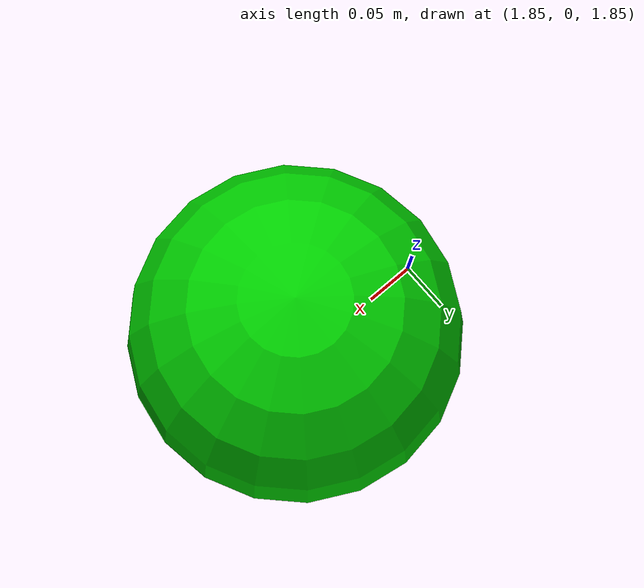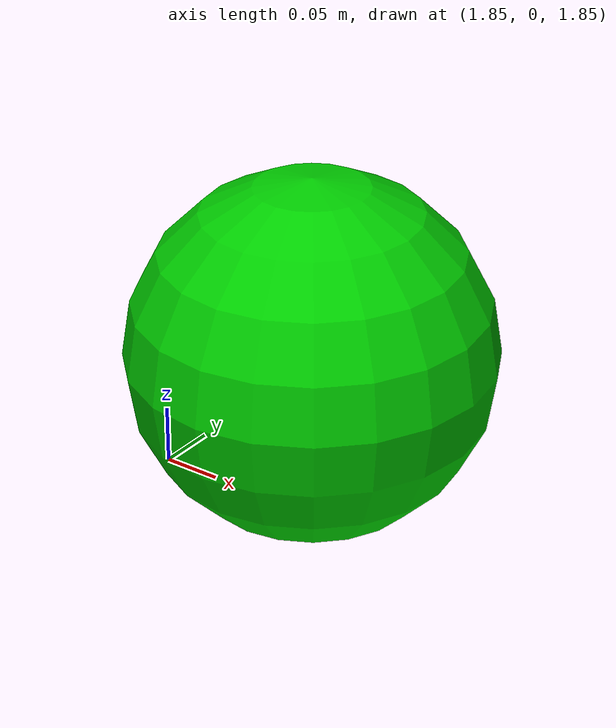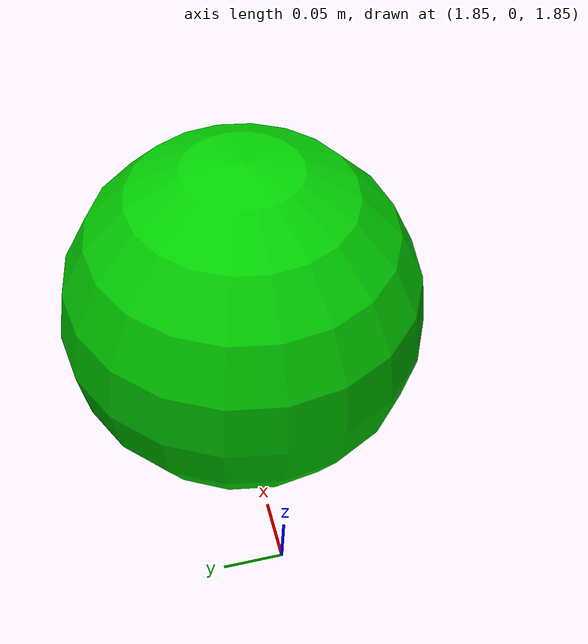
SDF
<?xml version="1.0" ?>
<!-- Open world for the drone: a ground plane and a target marker at altitude. No rendering
     sensors are needed, so the Sensors system is omitted — fully headless. -->
<sdf version="1.9">
  <world name="warehouse">
    <physics name="1ms" type="ignored">
      <max_step_size>0.001</max_step_size>
      <real_time_factor>1.0</real_time_factor>
    </physics>
    <plugin filename="gz-sim-physics-system" name="gz::sim::systems::Physics"/>
    <plugin filename="gz-sim-scene-broadcaster-system" name="gz::sim::systems::SceneBroadcaster"/>
    <plugin filename="gz-sim-user-commands-system" name="gz::sim::systems::UserCommands"/>
    <plugin filename="gz-sim-imu-system" name="gz::sim::systems::Imu"/>

    <light type="directional" name="sun">
      <cast_shadows>false</cast_shadows>
      <direction>-0.5 0.1 -0.9</direction>
      <diffuse>1 1 1 1</diffuse>
      <specular>0.2 0.2 0.2 1</specular>
    </light>

    <model name="ground">
      <static>true</static>
      <link name="link">
        <collision name="c"><geometry><plane><normal>0 0 1</normal><size>40 40</size></plane></geometry></collision>
        <visual name="v">
          <geometry><plane><normal>0 0 1</normal><size>40 40</size></plane></geometry>
          <material><ambient>0.3 0.3 0.3 1</ambient><diffuse>0.5 0.5 0.5 1</diffuse></material>
        </visual>
      </link>
    </model>

    <!-- Target marker (visual only) at (2, 0, 2): fly here and hover. -->
    <model name="goal_marker">
      <static>true</static>
      <pose>2 0 2 0 0 0</pose>
      <link name="link">
        <visual name="v">
          <geometry><sphere><radius>0.15</radius></sphere></geometry>
          <material><ambient>0 0.6 0 1</ambient><diffuse>0 0.8 0 1</diffuse></material>
        </visual>
      </link>
    </model>

    <!-- The drone is spawned at launch. -->
  </world>
</sdf>
